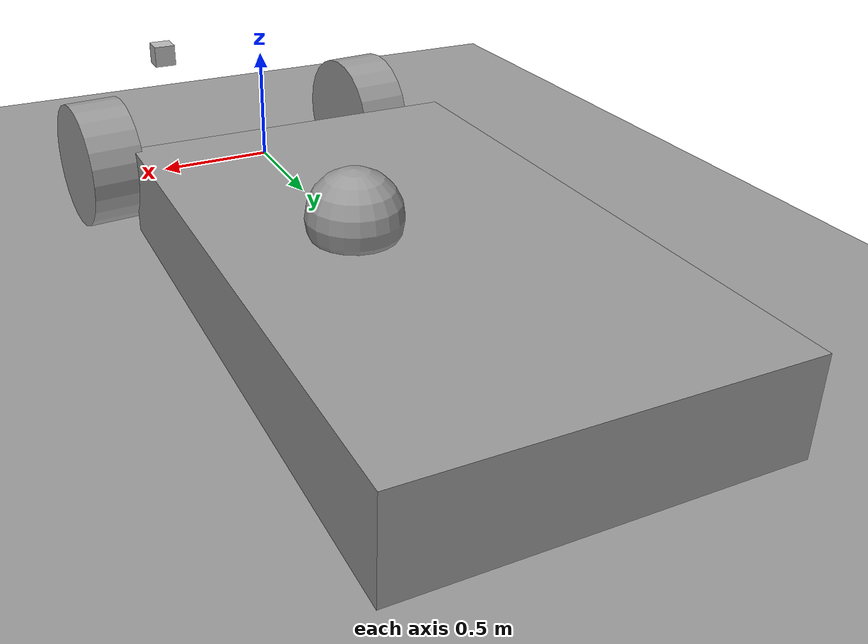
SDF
<?xml version='1.0'?>
<sdf version='1.6'>
  <model name='my_vehicle'>
    <link name='link_0'>
      <inertial>
        <mass>1.92184</mass>
        <inertia>
          <ixx>1.19379</ixx>
          <ixy>0</ixy>
          <ixz>0</ixz>
          <iyy>0.451842</iyy>
          <iyz>0</iyz>
          <izz>1.58362</izz>
        </inertia>
        <pose frame=''>0 0 0 0 -0 0</pose>
      </inertial>
      <pose frame=''>-0.186653 1.24804 -0.132197 0 -0 0</pose>
      <gravity>1</gravity>
      <self_collide>0</self_collide>
      <kinematic>0</kinematic>
      <enable_wind>0</enable_wind>
      <visual name='visual'>
        <pose frame=''>0 0 0 0 -0 0</pose>
        <geometry>
          <box>
            <size>1.62102 2.69452 0.439996</size>
          </box>
        </geometry>
        <material>
          <lighting>1</lighting>
          <script>
            <uri>file://media/materials/scripts/gazebo.material</uri>
            <name>Gazebo/Grey</name>
          </script>
          <shader type='vertex'>
            <normal_map>__default__</normal_map>
          </shader>
          <ambient>0.3 0.3 0.3 1</ambient>
          <diffuse>0.7 0.7 0.7 1</diffuse>
          <specular>0.01 0.01 0.01 1</specular>
          <emissive>0 0 0 1</emissive>
        </material>
        <transparency>0</transparency>
        <cast_shadows>1</cast_shadows>
      </visual>
      <collision name='collision'>
        <laser_retro>0</laser_retro>
        <max_contacts>10</max_contacts>
        <pose frame=''>0 0 0 0 -0 0</pose>
        <geometry>
          <box>
            <size>1.62102 2.69452 0.439996</size>
          </box>
        </geometry>
        <surface>
          <friction>
            <ode>
              <mu>1</mu>
              <mu2>1</mu2>
              <fdir1>0 0 0</fdir1>
              <slip1>0</slip1>
              <slip2>0</slip2>
            </ode>
            <torsional>
              <coefficient>1</coefficient>
              <patch_radius>0</patch_radius>
              <surface_radius>0</surface_radius>
              <use_patch_radius>1</use_patch_radius>
              <ode>
                <slip>0</slip>
              </ode>
            </torsional>
          </friction>
          <bounce>
            <restitution_coefficient>0</restitution_coefficient>
            <threshold>1e+06</threshold>
          </bounce>
          <contact>
            <collide_without_contact>0</collide_without_contact>
            <collide_without_contact_bitmask>1</collide_without_contact_bitmask>
            <collide_bitmask>1</collide_bitmask>
            <ode>
              <soft_cfm>0</soft_cfm>
              <soft_erp>0.2</soft_erp>
              <kp>1e+13</kp>
              <kd>1</kd>
              <max_vel>0.01</max_vel>
              <min_depth>0</min_depth>
            </ode>
            <bullet>
              <split_impulse>1</split_impulse>
              <split_impulse_penetration_threshold>-0.01</split_impulse_penetration_threshold>
              <soft_cfm>0</soft_cfm>
              <soft_erp>0.2</soft_erp>
              <kp>1e+13</kp>
              <kd>1</kd>
            </bullet>
          </contact>
        </surface>
      </collision>
    </link>
    <link name='link_1'>
      <inertial>
        <mass>1</mass>
        <inertia>
          <ixx>0.145833</ixx>
          <ixy>0</ixy>
          <ixz>0</ixz>
          <iyy>0.145833</iyy>
          <iyz>0</iyz>
          <izz>0.125</izz>
        </inertia>
        <pose frame=''>0 0 0 0 -0 0</pose>
      </inertial>
      <pose frame=''>0.740129 -0.306168 -0.032183 1.57079 -9.6e-05 -1.48044</pose>
      <gravity>1</gravity>
      <self_collide>0</self_collide>
      <kinematic>0</kinematic>
      <enable_wind>0</enable_wind>
      <visual name='visual'>
        <pose frame=''>0 0 0 0 -0 0</pose>
        <geometry>
          <cylinder>
            <radius>0.3</radius>
            <length>0.25</length>
          </cylinder>
        </geometry>
        <material>
          <lighting>1</lighting>
          <script>
            <uri>file://media/materials/scripts/gazebo.material</uri>
            <name>Gazebo/Grey</name>
          </script>
          <shader type='vertex'>
            <normal_map>__default__</normal_map>
          </shader>
          <ambient>0.3 0.3 0.3 1</ambient>
          <diffuse>0.7 0.7 0.7 1</diffuse>
          <specular>0.01 0.01 0.01 1</specular>
          <emissive>0 0 0 1</emissive>
        </material>
        <transparency>0</transparency>
        <cast_shadows>1</cast_shadows>
      </visual>
      <collision name='collision'>
        <laser_retro>0</laser_retro>
        <max_contacts>10</max_contacts>
        <pose frame=''>0 0 0 0 -0 0</pose>
        <geometry>
          <cylinder>
            <radius>0.3</radius>
            <length>0.25</length>
          </cylinder>
        </geometry>
        <surface>
          <friction>
            <ode>
              <mu>1</mu>
              <mu2>1</mu2>
              <fdir1>0 0 0</fdir1>
              <slip1>0</slip1>
              <slip2>0</slip2>
            </ode>
            <torsional>
              <coefficient>1</coefficient>
              <patch_radius>0</patch_radius>
              <surface_radius>0</surface_radius>
              <use_patch_radius>1</use_patch_radius>
              <ode>
                <slip>0</slip>
              </ode>
            </torsional>
          </friction>
          <bounce>
            <restitution_coefficient>0</restitution_coefficient>
            <threshold>1e+06</threshold>
          </bounce>
          <contact>
            <collide_without_contact>0</collide_without_contact>
            <collide_without_contact_bitmask>1</collide_without_contact_bitmask>
            <collide_bitmask>1</collide_bitmask>
            <ode>
              <soft_cfm>0</soft_cfm>
              <soft_erp>0.2</soft_erp>
              <kp>1e+13</kp>
              <kd>1</kd>
              <max_vel>0.01</max_vel>
              <min_depth>0</min_depth>
            </ode>
            <bullet>
              <split_impulse>1</split_impulse>
              <split_impulse_penetration_threshold>-0.01</split_impulse_penetration_threshold>
              <soft_cfm>0</soft_cfm>
              <soft_erp>0.2</soft_erp>
              <kp>1e+13</kp>
              <kd>1</kd>
            </bullet>
          </contact>
        </surface>
      </collision>
    </link>
    <link name='link_1_clone'>
      <inertial>
        <mass>1</mass>
        <inertia>
          <ixx>0.145833</ixx>
          <ixy>0</ixy>
          <ixz>0</ixz>
          <iyy>0.145833</iyy>
          <iyz>0</iyz>
          <izz>0.125</izz>
        </inertia>
        <pose frame=''>0 0 0 0 -0 0</pose>
      </inertial>
      <pose frame=''>-0.701136 -0.437998 -0.032192 1.57079 -9.6e-05 -1.48044</pose>
      <gravity>1</gravity>
      <self_collide>0</self_collide>
      <kinematic>0</kinematic>
      <enable_wind>0</enable_wind>
      <visual name='visual'>
        <pose frame=''>0 0 0 0 -0 0</pose>
        <geometry>
          <cylinder>
            <radius>0.3</radius>
            <length>0.25</length>
          </cylinder>
        </geometry>
        <material>
          <lighting>1</lighting>
          <script>
            <uri>file://media/materials/scripts/gazebo.material</uri>
            <name>Gazebo/Grey</name>
          </script>
          <shader type='vertex'>
            <normal_map>__default__</normal_map>
          </shader>
          <ambient>0.3 0.3 0.3 1</ambient>
          <diffuse>0.7 0.7 0.7 1</diffuse>
          <specular>0.01 0.01 0.01 1</specular>
          <emissive>0 0 0 1</emissive>
        </material>
        <transparency>0</transparency>
        <cast_shadows>1</cast_shadows>
      </visual>
      <collision name='collision'>
        <laser_retro>0</laser_retro>
        <max_contacts>10</max_contacts>
        <pose frame=''>0 0 0 0 -0 0</pose>
        <geometry>
          <cylinder>
            <radius>0.3</radius>
            <length>0.25</length>
          </cylinder>
        </geometry>
        <surface>
          <friction>
            <ode>
              <mu>1</mu>
              <mu2>1</mu2>
              <fdir1>0 0 0</fdir1>
              <slip1>0</slip1>
              <slip2>0</slip2>
            </ode>
            <torsional>
              <coefficient>1</coefficient>
              <patch_radius>0</patch_radius>
              <surface_radius>0</surface_radius>
              <use_patch_radius>1</use_patch_radius>
              <ode>
                <slip>0</slip>
              </ode>
            </torsional>
          </friction>
          <bounce>
            <restitution_coefficient>0</restitution_coefficient>
            <threshold>1e+06</threshold>
          </bounce>
          <contact>
            <collide_without_contact>0</collide_without_contact>
            <collide_without_contact_bitmask>1</collide_without_contact_bitmask>
            <collide_bitmask>1</collide_bitmask>
            <ode>
              <soft_cfm>0</soft_cfm>
              <soft_erp>0.2</soft_erp>
              <kp>1e+13</kp>
              <kd>1</kd>
              <max_vel>0.01</max_vel>
              <min_depth>0</min_depth>
            </ode>
            <bullet>
              <split_impulse>1</split_impulse>
              <split_impulse_penetration_threshold>-0.01</split_impulse_penetration_threshold>
              <soft_cfm>0</soft_cfm>
              <soft_erp>0.2</soft_erp>
              <kp>1e+13</kp>
              <kd>1</kd>
            </bullet>
          </contact>
        </surface>
      </collision>
    </link>
    <link name='link_3'>
      <inertial>
        <mass>1</mass>
        <inertia>
          <ixx>0.1</ixx>
          <ixy>0</ixy>
          <ixz>0</ixz>
          <iyy>0.1</iyy>
          <iyz>0</iyz>
          <izz>0.1</izz>
        </inertia>
        <pose frame=''>0 0 0.2 0 -0 0</pose>
      </inertial>
      <pose frame=''>0.044267 1.17003 0.167803 0 -0 0</pose>
      <gravity>1</gravity>
      <self_collide>0</self_collide>
      <kinematic>0</kinematic>
      <enable_wind>0</enable_wind>
      <visual name='visual'>
        <pose frame=''>0 0 0 0 -0 0</pose>
        <geometry>
          <sphere>
            <radius>0.2</radius>
          </sphere>
        </geometry>
        <material>
          <lighting>1</lighting>
          <script>
            <uri>file://media/materials/scripts/gazebo.material</uri>
            <name>Gazebo/Grey</name>
          </script>
          <shader type='vertex'>
            <normal_map>__default__</normal_map>
          </shader>
          <ambient>0.3 0.3 0.3 1</ambient>
          <diffuse>0.7 0.7 0.7 1</diffuse>
          <specular>0.01 0.01 0.01 1</specular>
          <emissive>0 0 0 1</emissive>
        </material>
        <transparency>0</transparency>
        <cast_shadows>1</cast_shadows>
      </visual>
      <collision name='collision'>
        <laser_retro>0</laser_retro>
        <max_contacts>10</max_contacts>
        <pose frame=''>0 0 0 0 -0 0</pose>
        <geometry>
          <sphere>
            <radius>0.2</radius>
          </sphere>
        </geometry>
        <surface>
          <friction>
            <ode>
              <mu>1</mu>
              <mu2>1</mu2>
              <fdir1>0 0 0</fdir1>
              <slip1>0</slip1>
              <slip2>0</slip2>
            </ode>
            <torsional>
              <coefficient>1</coefficient>
              <patch_radius>0</patch_radius>
              <surface_radius>0</surface_radius>
              <use_patch_radius>1</use_patch_radius>
              <ode>
                <slip>0</slip>
              </ode>
            </torsional>
          </friction>
          <bounce>
            <restitution_coefficient>0</restitution_coefficient>
            <threshold>1e+06</threshold>
          </bounce>
          <contact>
            <collide_without_contact>0</collide_without_contact>
            <collide_without_contact_bitmask>1</collide_without_contact_bitmask>
            <collide_bitmask>1</collide_bitmask>
            <ode>
              <soft_cfm>0</soft_cfm>
              <soft_erp>0.2</soft_erp>
              <kp>1e+13</kp>
              <kd>1</kd>
              <max_vel>0.01</max_vel>
              <min_depth>0</min_depth>
            </ode>
            <bullet>
              <split_impulse>1</split_impulse>
              <split_impulse_penetration_threshold>-0.01</split_impulse_penetration_threshold>
              <soft_cfm>0</soft_cfm>
              <soft_erp>0.2</soft_erp>
              <kp>1e+13</kp>
              <kd>1</kd>
            </bullet>
          </contact>
        </surface>
      </collision>
    </link>
    <model name='depth_camera'>
      <link name='link'>
        <pose frame=''>0 0 0.05 0 -0 0</pose>
        <inertial>
          <mass>0.1</mass>
          <inertia>
            <ixx>0.000166667</ixx>
            <iyy>0.000166667</iyy>
            <izz>0.000166667</izz>
            <ixy>0</ixy>
            <ixz>0</ixz>
            <iyz>0</iyz>
          </inertia>
        </inertial>
        <collision name='collision'>
          <geometry>
            <box>
              <size>0.1 0.1 0.1</size>
            </box>
          </geometry>
        </collision>
        <visual name='visual'>
          <geometry>
            <box>
              <size>0.1 0.1 0.1</size>
            </box>
          </geometry>
        </visual>
        <sensor name='camera' type='depth'>
          <camera name='__default__'>
            <horizontal_fov>1.047</horizontal_fov>
            <image>
              <width>320</width>
              <height>240</height>
            </image>
            <clip>
              <near>0.1</near>
              <far>100</far>
            </clip>
          </camera>
          <always_on>1</always_on>
          <update_rate>30</update_rate>
          <visualize>1</visualize>
        </sensor>
      </link>
      <pose frame=''>0.346519 -0.484486 0.360967 0 -0 0</pose>
    </model>
    <model name='ground_plane'>
      <static>1</static>
      <link name='link'>
        <collision name='collision'>
          <geometry>
            <plane>
              <normal>0 0 1</normal>
              <size>100 100</size>
            </plane>
          </geometry>
          <surface>
            <contact>
              <collide_bitmask>65535</collide_bitmask>
            </contact>
            <friction>
              <ode>
                <mu>100</mu>
                <mu2>50</mu2>
              </ode>
            </friction>
          </surface>
        </collision>
        <visual name='visual'>
          <cast_shadows>0</cast_shadows>
          <geometry>
            <plane>
              <normal>0 0 1</normal>
              <size>100 100</size>
            </plane>
          </geometry>
          <material>
            <script>
              <uri>file://media/materials/scripts/gazebo.material</uri>
              <name>Gazebo/Grey</name>
            </script>
          </material>
        </visual>
      </link>
      <pose frame=''>-0.243122 -1.18941 -0.332197 0 -0 0</pose>
    </model>
    <joint name='link_0_JOINT_0' type='revolute'>
      <parent>link_0</parent>
      <child>link_1</child>
      <pose frame=''>0 0 0 0 -0 0</pose>
      <axis>
        <xyz>0 0 1</xyz>
        <use_parent_model_frame>0</use_parent_model_frame>
        <limit>
          <lower>-1.79769e+308</lower>
          <upper>1.79769e+308</upper>
          <effort>-1</effort>
          <velocity>-1</velocity>
        </limit>
        <dynamics>
          <spring_reference>0</spring_reference>
          <spring_stiffness>0</spring_stiffness>
          <damping>0</damping>
        </dynamics>
      </axis>
      <physics>
        <ode>
          <limit>
            <cfm>0</cfm>
            <erp>0.2</erp>
          </limit>
          <suspension>
            <cfm>0</cfm>
            <erp>0.2</erp>
          </suspension>
        </ode>
      </physics>
    </joint>
    <joint name='link_0_JOINT_1' type='revolute'>
      <parent>link_0</parent>
      <child>link_1_clone</child>
      <pose frame=''>0 0 0 0 -0 0</pose>
      <axis>
        <xyz>0 0 1</xyz>
        <use_parent_model_frame>0</use_parent_model_frame>
        <limit>
          <lower>-1.79769e+308</lower>
          <upper>1.79769e+308</upper>
          <effort>-1</effort>
          <velocity>-1</velocity>
        </limit>
        <dynamics>
          <spring_reference>0</spring_reference>
          <spring_stiffness>0</spring_stiffness>
          <damping>0</damping>
        </dynamics>
      </axis>
      <physics>
        <ode>
          <limit>
            <cfm>0</cfm>
            <erp>0.2</erp>
          </limit>
          <suspension>
            <cfm>0</cfm>
            <erp>0.2</erp>
          </suspension>
        </ode>
      </physics>
    </joint>
    <joint name='link_0_JOINT_3' type='ball'>
      <parent>link_0</parent>
      <child>link_3</child>
      <pose frame=''>0 0 0 0 -0 0</pose>
      <physics>
        <ode>
          <limit>
            <cfm>0</cfm>
            <erp>0.2</erp>
          </limit>
          <suspension>
            <cfm>0</cfm>
            <erp>0.2</erp>
          </suspension>
        </ode>
      </physics>
    </joint>
    <joint name='link_0_JOINT_4' type='fixed'>
      <parent>link_0</parent>
      <child>depth_camera::link</child>
      <pose frame=''>0 0 0 0 -0 0</pose>
      <physics>
        <ode>
          <limit>
            <cfm>0</cfm>
            <erp>0.2</erp>
          </limit>
          <suspension>
            <cfm>0</cfm>
            <erp>0.2</erp>
          </suspension>
        </ode>
      </physics>
    </joint>
    <static>0</static>
    <allow_auto_disable>1</allow_auto_disable>
    <plugin name='follower' filename='libFollowerPlugin.so'/>
  </model>
</sdf>
